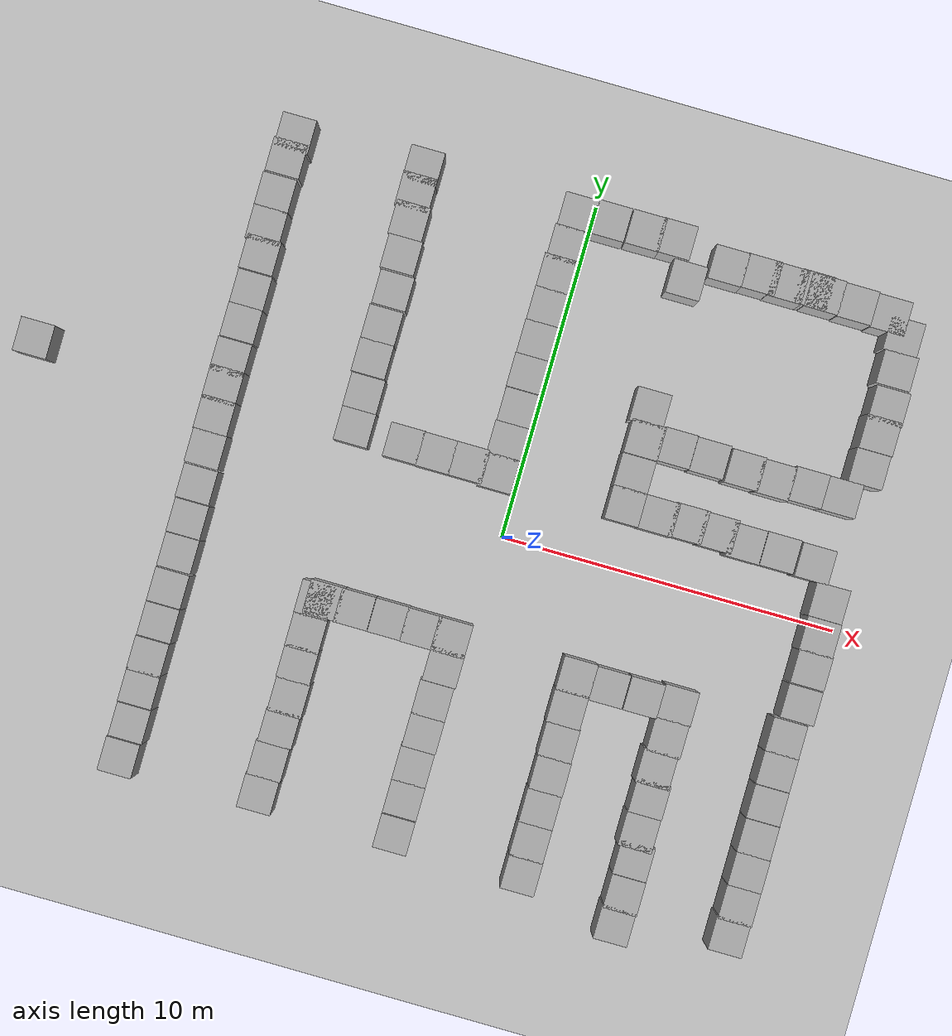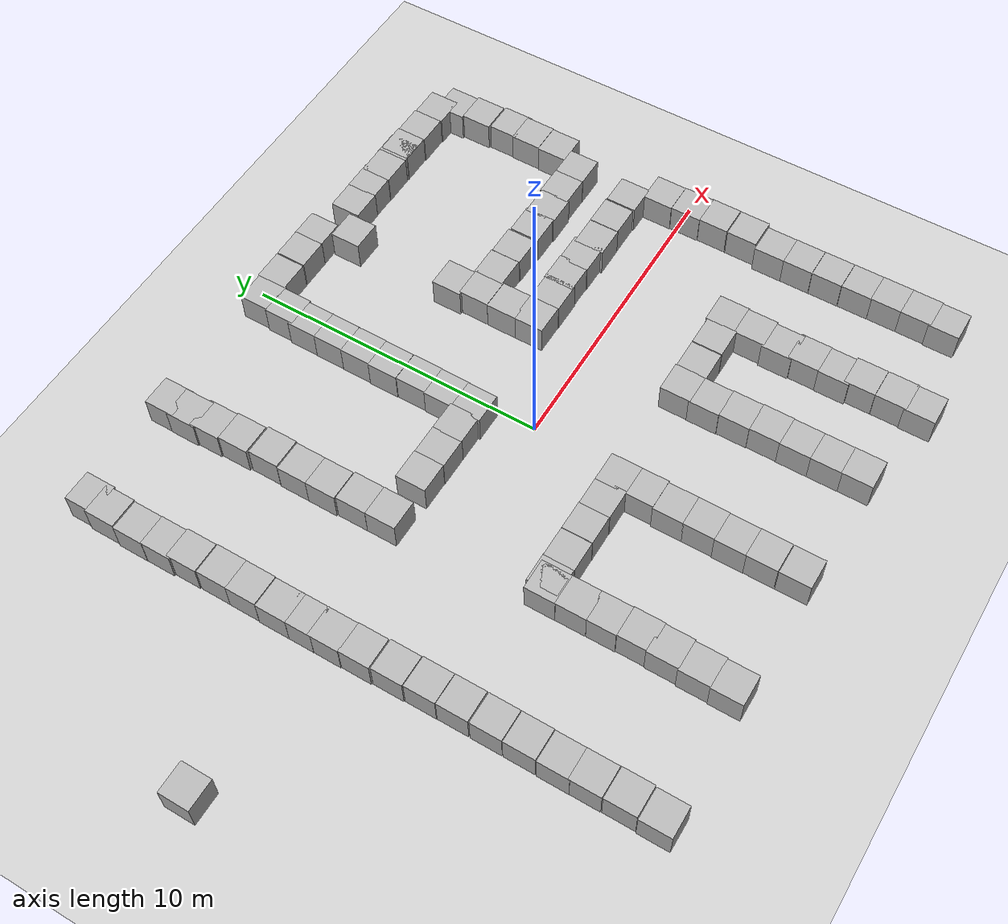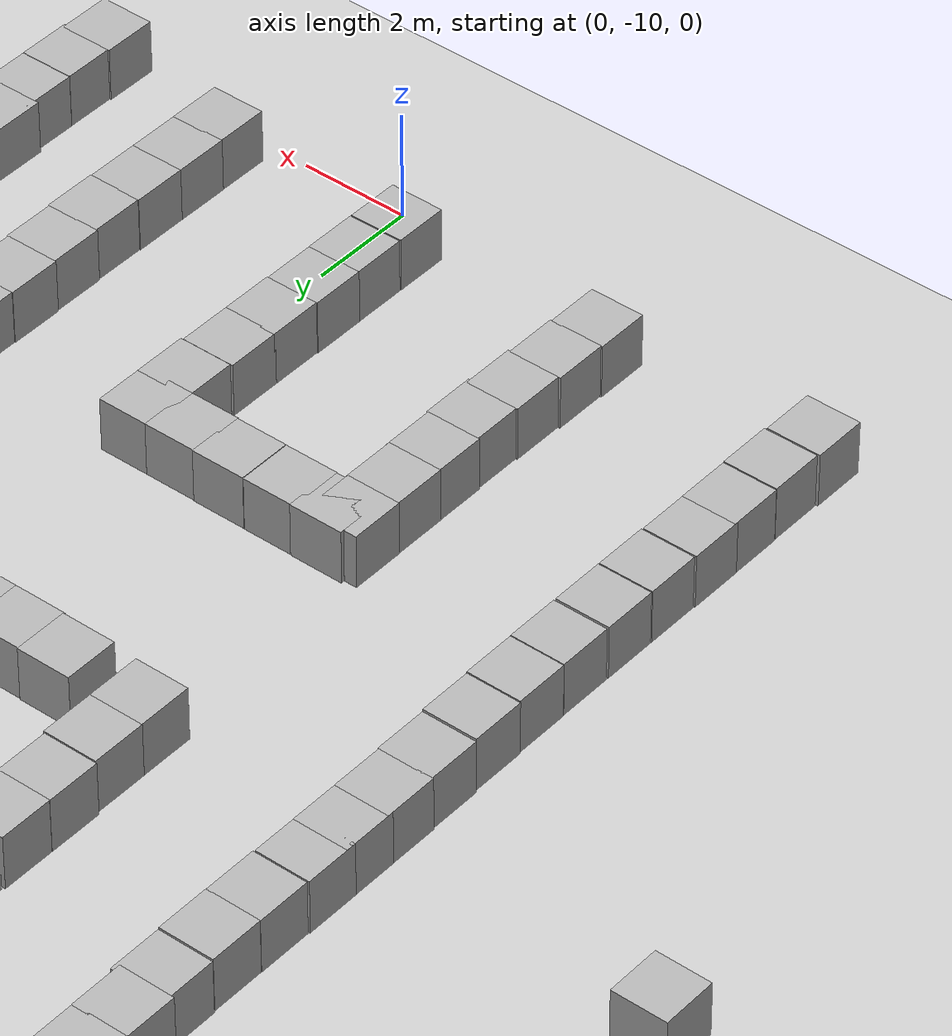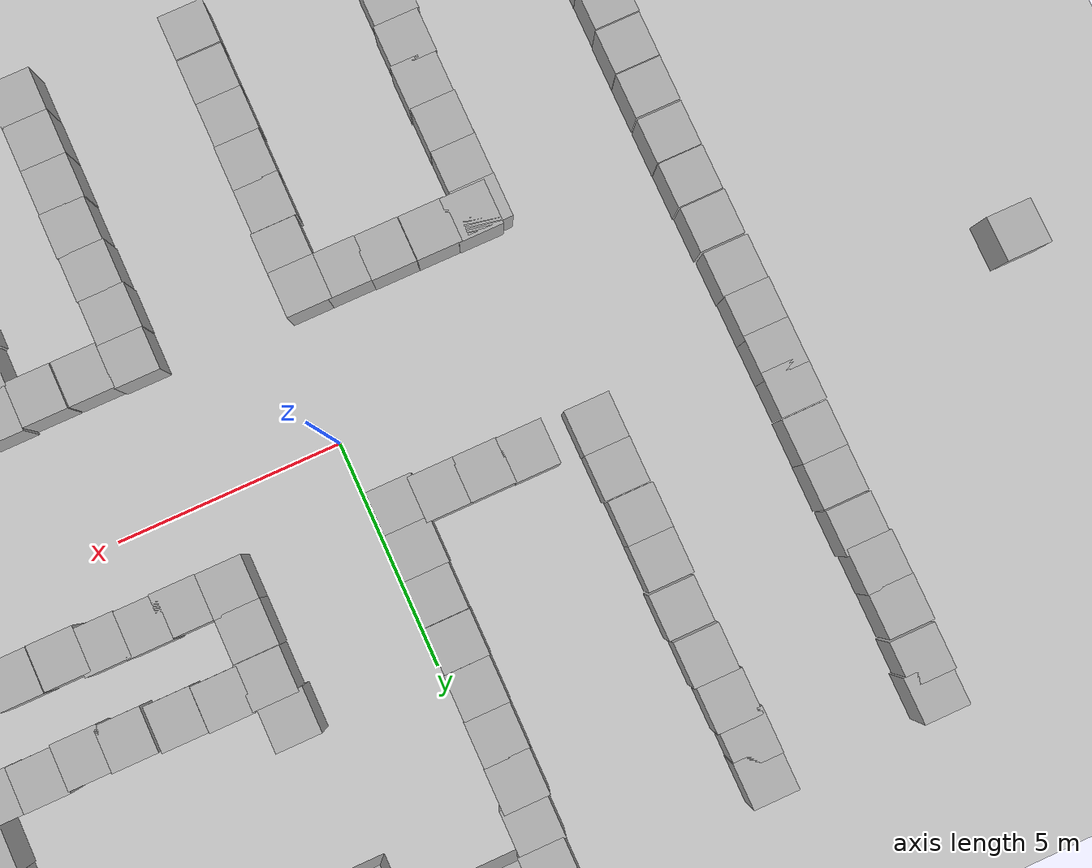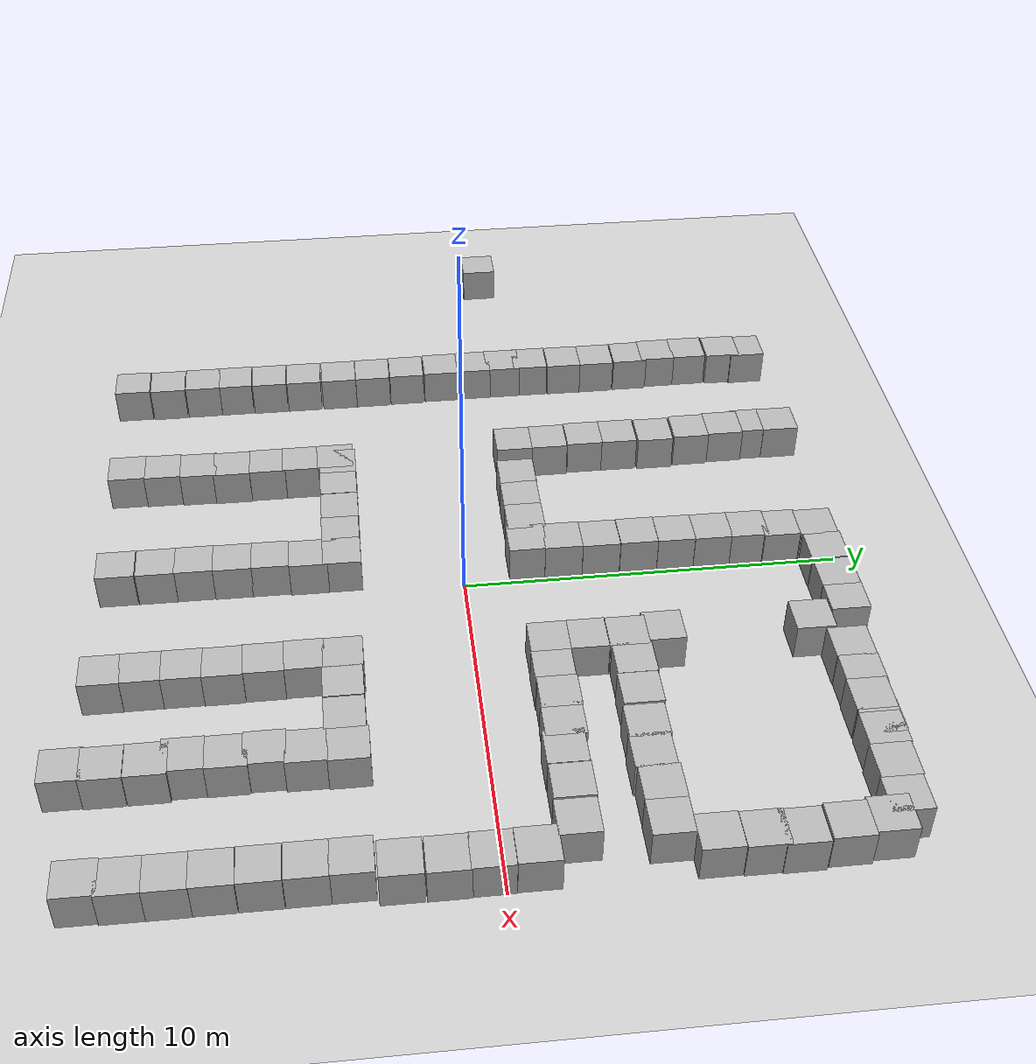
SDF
<sdf version="1.9">
 <world name="empty">
  <model name="ground_plane">
   <static>true</static>
   <link name="link">
    <collision name="collision">
     <geometry><plane><normal>0 0 1</normal><size>100 100</size></plane></geometry>
    </collision>
    <visual name="visual">
     <geometry><plane><normal>0 0 1</normal><size>100 100</size></plane></geometry>
     <material>
      <ambient>0.8 0.8 0.8 1</ambient>
      <diffuse>0.8 0.8 0.8 1</diffuse>
      <specular>0.8 0.8 0.8 1</specular>
     </material>
    </visual>
    <inertial>
     <mass>1</mass>
     <inertia><ixx>1</ixx><ixy>0</ixy><ixz>0</ixz><iyy>1</iyy><iyz>0</iyz><izz>1</izz></inertia>
    </inertial>
   </link>
  </model>
  <model name="ziekenhuis_walls">
   <static>true</static>
   <link name="wall_0">
    <pose>-0.628622 -3.17576 0.5 0 -0 0</pose>
    <visual name="visual_0">
     <geometry><box><size>1 1 1</size></box></geometry>
     <material>
      <ambient>0.3 0.3 0.3 1</ambient>
      <diffuse>0.7 0.7 0.7 1</diffuse>
      <specular>1 1 1 1</specular>
     </material>
    </visual>
    <collision name="collision_0"><geometry><box><size>1 1 1</size></box></geometry></collision>
   </link>
   <link name="wall_1">
    <pose>-1.54573 -3.17539 0.5 0 -0 0</pose>
    <visual name="visual_1">
     <geometry><box><size>1 1 1</size></box></geometry>
     <material>
      <ambient>0.3 0.3 0.3 1</ambient>
      <diffuse>0.7 0.7 0.7 1</diffuse>
      <specular>1 1 1 1</specular>
     </material>
    </visual>
    <collision name="collision_1"><geometry><box><size>1 1 1</size></box></geometry></collision>
   </link>
   <link name="wall_2">
    <pose>-2.50675 -3.16277 0.5 0 -0 0</pose>
    <visual name="visual_2">
     <geometry><box><size>1 1 1</size></box></geometry>
     <material>
      <ambient>0.3 0.3 0.3 1</ambient>
      <diffuse>0.7 0.7 0.7 1</diffuse>
      <specular>1 1 1 1</specular>
     </material>
    </visual>
    <collision name="collision_2"><geometry><box><size>1 1 1</size></box></geometry></collision>
   </link>
   <link name="wall_3">
    <pose>-3.51964 -3.15896 0.5 0 -0 0</pose>
    <visual name="visual_3">
     <geometry><box><size>1 1 1</size></box></geometry>
     <material>
      <ambient>0.3 0.3 0.3 1</ambient>
      <diffuse>0.7 0.7 0.7 1</diffuse>
      <specular>1 1 1 1</specular>
     </material>
    </visual>
    <collision name="collision_3"><geometry><box><size>1 1 1</size></box></geometry></collision>
   </link>
   <link name="wall_4">
    <pose>-4.44088 -3.14907 0.5 0 -0 0</pose>
    <visual name="visual_4">
     <geometry><box><size>1 1 1</size></box></geometry>
     <material>
      <ambient>0.3 0.3 0.3 1</ambient>
      <diffuse>0.7 0.7 0.7 1</diffuse>
      <specular>1 1 1 1</specular>
     </material>
    </visual>
    <collision name="collision_4"><geometry><box><size>1 1 1</size></box></geometry></collision>
   </link>
   <link name="wall_5">
    <pose>-14.46258 1.78849 0.5 0 -0 0</pose>
    <visual name="visual_5">
     <geometry><box><size>1 1 1</size></box></geometry>
     <material>
      <ambient>0.3 0.3 0.3 1</ambient>
      <diffuse>0.7 0.7 0.7 1</diffuse>
      <specular>1 1 1 1</specular>
     </material>
    </visual>
    <collision name="collision_5"><geometry><box><size>1 1 1</size></box></geometry></collision>
   </link>
   <link name="wall_6">
    <pose>-3.47193 1.7902 0.5 0 -0 0</pose>
    <visual name="visual_6">
     <geometry><box><size>1 1 1</size></box></geometry>
     <material>
      <ambient>0.3 0.3 0.3 1</ambient>
      <diffuse>0.7 0.7 0.7 1</diffuse>
      <specular>1 1 1 1</specular>
     </material>
    </visual>
    <collision name="collision_6"><geometry><box><size>1 1 1</size></box></geometry></collision>
   </link>
   <link name="wall_7">
    <pose>-2.5012 1.77664 0.5 0 -0 0</pose>
    <visual name="visual_7">
     <geometry><box><size>1 1 1</size></box></geometry>
     <material>
      <ambient>0.3 0.3 0.3 1</ambient>
      <diffuse>0.7 0.7 0.7 1</diffuse>
      <specular>1 1 1 1</specular>
     </material>
    </visual>
    <collision name="collision_7"><geometry><box><size>1 1 1</size></box></geometry></collision>
   </link>
   <link name="wall_8">
    <pose>-1.52755 1.77711 0.5 0 -0 0</pose>
    <visual name="visual_8">
     <geometry><box><size>1 1 1</size></box></geometry>
     <material>
      <ambient>0.3 0.3 0.3 1</ambient>
      <diffuse>0.7 0.7 0.7 1</diffuse>
      <specular>1 1 1 1</specular>
     </material>
    </visual>
    <collision name="collision_8"><geometry><box><size>1 1 1</size></box></geometry></collision>
   </link>
   <link name="wall_9">
    <pose>-0.640154 1.71751 0.5 0 -0 0</pose>
    <visual name="visual_9">
     <geometry><box><size>1 1 1</size></box></geometry>
     <material>
      <ambient>0.3 0.3 0.3 1</ambient>
      <diffuse>0.7 0.7 0.7 1</diffuse>
      <specular>1 1 1 1</specular>
     </material>
    </visual>
    <collision name="collision_9"><geometry><box><size>1 1 1</size></box></geometry></collision>
   </link>
   <link name="wall_10">
    <pose>-0.624925 -4.05306 0.5 0 -0 0</pose>
    <visual name="visual_10">
     <geometry><box><size>1 1 1</size></box></geometry>
     <material>
      <ambient>0.3 0.3 0.3 1</ambient>
      <diffuse>0.7 0.7 0.7 1</diffuse>
      <specular>1 1 1 1</specular>
     </material>
    </visual>
    <collision name="collision_10"><geometry><box><size>1 1 1</size></box></geometry></collision>
   </link>
   <link name="wall_11">
    <pose>-0.666125 -5.05588 0.5 0 -0 0</pose>
    <visual name="visual_11">
     <geometry><box><size>1 1 1</size></box></geometry>
     <material>
      <ambient>0.3 0.3 0.3 1</ambient>
      <diffuse>0.7 0.7 0.7 1</diffuse>
      <specular>1 1 1 1</specular>
     </material>
    </visual>
    <collision name="collision_11"><geometry><box><size>1 1 1</size></box></geometry></collision>
   </link>
   <link name="wall_12">
    <pose>-0.666125 -6.02587 0.5 0 -0 0</pose>
    <visual name="visual_12">
     <geometry><box><size>1 1 1</size></box></geometry>
     <material>
      <ambient>0.3 0.3 0.3 1</ambient>
      <diffuse>0.7 0.7 0.7 1</diffuse>
      <specular>1 1 1 1</specular>
     </material>
    </visual>
    <collision name="collision_12"><geometry><box><size>1 1 1</size></box></geometry></collision>
   </link>
   <link name="wall_13">
    <pose>-0.682233 -7.0253 0.5 0 -0 0</pose>
    <visual name="visual_13">
     <geometry><box><size>1 1 1</size></box></geometry>
     <material>
      <ambient>0.3 0.3 0.3 1</ambient>
      <diffuse>0.7 0.7 0.7 1</diffuse>
      <specular>1 1 1 1</specular>
     </material>
    </visual>
    <collision name="collision_13"><geometry><box><size>1 1 1</size></box></geometry></collision>
   </link>
   <link name="wall_14">
    <pose>-0.678292 -8.00642 0.500001 0 -0 0</pose>
    <visual name="visual_14">
     <geometry><box><size>1 1 1</size></box></geometry>
     <material>
      <ambient>0.3 0.3 0.3 1</ambient>
      <diffuse>0.7 0.7 0.7 1</diffuse>
      <specular>1 1 1 1</specular>
     </material>
    </visual>
    <collision name="collision_14"><geometry><box><size>1 1 1</size></box></geometry></collision>
   </link>
   <link name="wall_15">
    <pose>-0.682523 -9.03062 0.5 0 -0 0</pose>
    <visual name="visual_15">
     <geometry><box><size>1 1 1</size></box></geometry>
     <material>
      <ambient>0.3 0.3 0.3 1</ambient>
      <diffuse>0.7 0.7 0.7 1</diffuse>
      <specular>1 1 1 1</specular>
     </material>
    </visual>
    <collision name="collision_15"><geometry><box><size>1 1 1</size></box></geometry></collision>
   </link>
   <link name="wall_16">
    <pose>-0.62645 2.66518 0.5 0 -0 0</pose>
    <visual name="visual_16">
     <geometry><box><size>1 1 1</size></box></geometry>
     <material>
      <ambient>0.3 0.3 0.3 1</ambient>
      <diffuse>0.7 0.7 0.7 1</diffuse>
      <specular>1 1 1 1</specular>
     </material>
    </visual>
    <collision name="collision_16"><geometry><box><size>1 1 1</size></box></geometry></collision>
   </link>
   <link name="wall_17">
    <pose>-0.602355 3.6627 0.5 0 -0 0</pose>
    <visual name="visual_17">
     <geometry><box><size>1 1 1</size></box></geometry>
     <material>
      <ambient>0.3 0.3 0.3 1</ambient>
      <diffuse>0.7 0.7 0.7 1</diffuse>
      <specular>1 1 1 1</specular>
     </material>
    </visual>
    <collision name="collision_17"><geometry><box><size>1 1 1</size></box></geometry></collision>
   </link>
   <link name="wall_18">
    <pose>-0.610927 4.67319 0.5 0 -0 0</pose>
    <visual name="visual_18">
     <geometry><box><size>1 1 1</size></box></geometry>
     <material>
      <ambient>0.3 0.3 0.3 1</ambient>
      <diffuse>0.7 0.7 0.7 1</diffuse>
      <specular>1 1 1 1</specular>
     </material>
    </visual>
    <collision name="collision_18"><geometry><box><size>1 1 1</size></box></geometry></collision>
   </link>
   <link name="wall_19">
    <pose>-0.595787 5.67413 0.5 0 -0 0</pose>
    <visual name="visual_19">
     <geometry><box><size>1 1 1</size></box></geometry>
     <material>
      <ambient>0.3 0.3 0.3 1</ambient>
      <diffuse>0.7 0.7 0.7 1</diffuse>
      <specular>1 1 1 1</specular>
     </material>
    </visual>
    <collision name="collision_19"><geometry><box><size>1 1 1</size></box></geometry></collision>
   </link>
   <link name="wall_20">
    <pose>-0.583933 6.66382 0.5 0 -0 0</pose>
    <visual name="visual_20">
     <geometry><box><size>1 1 1</size></box></geometry>
     <material>
      <ambient>0.3 0.3 0.3 1</ambient>
      <diffuse>0.7 0.7 0.7 1</diffuse>
      <specular>1 1 1 1</specular>
     </material>
    </visual>
    <collision name="collision_20"><geometry><box><size>1 1 1</size></box></geometry></collision>
   </link>
   <link name="wall_21">
    <pose>-0.575678 7.6423 0.5 0 -0 0</pose>
    <visual name="visual_21">
     <geometry><box><size>1 1 1</size></box></geometry>
     <material>
      <ambient>0.3 0.3 0.3 1</ambient>
      <diffuse>0.7 0.7 0.7 1</diffuse>
      <specular>1 1 1 1</specular>
     </material>
    </visual>
    <collision name="collision_21"><geometry><box><size>1 1 1</size></box></geometry></collision>
   </link>
   <link name="wall_22">
    <pose>3.11918 -3.27527 0.5 0 -0 0</pose>
    <visual name="visual_22">
     <geometry><box><size>1 1 1</size></box></geometry>
     <material>
      <ambient>0.3 0.3 0.3 1</ambient>
      <diffuse>0.7 0.7 0.7 1</diffuse>
      <specular>1 1 1 1</specular>
     </material>
    </visual>
    <collision name="collision_22"><geometry><box><size>1 1 1</size></box></geometry></collision>
   </link>
   <link name="wall_23">
    <pose>3.10814 -4.22657 0.5 0 -0 0</pose>
    <visual name="visual_23">
     <geometry><box><size>1 1 1</size></box></geometry>
     <material>
      <ambient>0.3 0.3 0.3 1</ambient>
      <diffuse>0.7 0.7 0.7 1</diffuse>
      <specular>1 1 1 1</specular>
     </material>
    </visual>
    <collision name="collision_23"><geometry><box><size>1 1 1</size></box></geometry></collision>
   </link>
   <link name="wall_24">
    <pose>3.12982 -5.21504 0.5 0 -0 0</pose>
    <visual name="visual_24">
     <geometry><box><size>1 1 1</size></box></geometry>
     <material>
      <ambient>0.3 0.3 0.3 1</ambient>
      <diffuse>0.7 0.7 0.7 1</diffuse>
      <specular>1 1 1 1</specular>
     </material>
    </visual>
    <collision name="collision_24"><geometry><box><size>1 1 1</size></box></geometry></collision>
   </link>
   <link name="wall_25">
    <pose>3.15098 -6.19862 0.5 0 -0 0</pose>
    <visual name="visual_25">
     <geometry><box><size>1 1 1</size></box></geometry>
     <material>
      <ambient>0.3 0.3 0.3 1</ambient>
      <diffuse>0.7 0.7 0.7 1</diffuse>
      <specular>1 1 1 1</specular>
     </material>
    </visual>
    <collision name="collision_25"><geometry><box><size>1 1 1</size></box></geometry></collision>
   </link>
   <link name="wall_26">
    <pose>3.13753 -7.18844 0.5 0 -0 0</pose>
    <visual name="visual_26">
     <geometry><box><size>1 1 1</size></box></geometry>
     <material>
      <ambient>0.3 0.3 0.3 1</ambient>
      <diffuse>0.7 0.7 0.7 1</diffuse>
      <specular>1 1 1 1</specular>
     </material>
    </visual>
    <collision name="collision_26"><geometry><box><size>1 1 1</size></box></geometry></collision>
   </link>
   <link name="wall_27">
    <pose>3.13773 -8.18491 0.5 0 -0 0</pose>
    <visual name="visual_27">
     <geometry><box><size>1 1 1</size></box></geometry>
     <material>
      <ambient>0.3 0.3 0.3 1</ambient>
      <diffuse>0.7 0.7 0.7 1</diffuse>
      <specular>1 1 1 1</specular>
     </material>
    </visual>
    <collision name="collision_27"><geometry><box><size>1 1 1</size></box></geometry></collision>
   </link>
   <link name="wall_28">
    <pose>3.14306 -9.15602 0.5 0 -0 0</pose>
    <visual name="visual_28">
     <geometry><box><size>1 1 1</size></box></geometry>
     <material>
      <ambient>0.3 0.3 0.3 1</ambient>
      <diffuse>0.7 0.7 0.7 1</diffuse>
      <specular>1 1 1 1</specular>
     </material>
    </visual>
    <collision name="collision_28"><geometry><box><size>1 1 1</size></box></geometry></collision>
   </link>
   <link name="wall_29">
    <pose>3.11958 1.81014 0.5 0 -0 0</pose>
    <visual name="visual_29">
     <geometry><box><size>1 1 1</size></box></geometry>
     <material>
      <ambient>0.3 0.3 0.3 1</ambient>
      <diffuse>0.7 0.7 0.7 1</diffuse>
      <specular>1 1 1 1</specular>
     </material>
    </visual>
    <collision name="collision_29"><geometry><box><size>1 1 1</size></box></geometry></collision>
   </link>
   <link name="wall_30">
    <pose>3.11744 2.76434 0.5 0 -0 0</pose>
    <visual name="visual_30">
     <geometry><box><size>1 1 1</size></box></geometry>
     <material>
      <ambient>0.3 0.3 0.3 1</ambient>
      <diffuse>0.7 0.7 0.7 1</diffuse>
      <specular>1 1 1 1</specular>
     </material>
    </visual>
    <collision name="collision_30"><geometry><box><size>1 1 1</size></box></geometry></collision>
   </link>
   <link name="wall_31">
    <pose>3.13123 3.77565 0.5 0 -0 0</pose>
    <visual name="visual_31">
     <geometry><box><size>1 1 1</size></box></geometry>
     <material>
      <ambient>0.3 0.3 0.3 1</ambient>
      <diffuse>0.7 0.7 0.7 1</diffuse>
      <specular>1 1 1 1</specular>
     </material>
    </visual>
    <collision name="collision_31"><geometry><box><size>1 1 1</size></box></geometry></collision>
   </link>
   <link name="wall_32">
    <pose>3.02328 8.49449 0.5 0 -0 0</pose>
    <visual name="visual_32">
     <geometry><box><size>1 1 1</size></box></geometry>
     <material>
      <ambient>0.3 0.3 0.3 1</ambient>
      <diffuse>0.7 0.7 0.7 1</diffuse>
      <specular>1 1 1 1</specular>
     </material>
    </visual>
    <collision name="collision_32"><geometry><box><size>1 1 1</size></box></geometry></collision>
   </link>
   <link name="wall_33">
    <pose>-0.51947 8.52309 0.5 0 -0 0</pose>
    <visual name="visual_33">
     <geometry><box><size>1 1 1</size></box></geometry>
     <material>
      <ambient>0.3 0.3 0.3 1</ambient>
      <diffuse>0.7 0.7 0.7 1</diffuse>
      <specular>1 1 1 1</specular>
     </material>
    </visual>
    <collision name="collision_33"><geometry><box><size>1 1 1</size></box></geometry></collision>
   </link>
   <link name="wall_34">
    <pose>-0.473583 9.48528 0.5 0 -0 0</pose>
    <visual name="visual_34">
     <geometry><box><size>1 1 1</size></box></geometry>
     <material>
      <ambient>0.3 0.3 0.3 1</ambient>
      <diffuse>0.7 0.7 0.7 1</diffuse>
      <specular>1 1 1 1</specular>
     </material>
    </visual>
    <collision name="collision_34"><geometry><box><size>1 1 1</size></box></geometry></collision>
   </link>
   <link name="wall_35">
    <pose>0.491718 9.52437 0.5 0 -0 0</pose>
    <visual name="visual_35">
     <geometry><box><size>1 1 1</size></box></geometry>
     <material>
      <ambient>0.3 0.3 0.3 1</ambient>
      <diffuse>0.7 0.7 0.7 1</diffuse>
      <specular>1 1 1 1</specular>
     </material>
    </visual>
    <collision name="collision_35"><geometry><box><size>1 1 1</size></box></geometry></collision>
   </link>
   <link name="wall_36">
    <pose>1.52596 9.52964 0.5 0 -0 0</pose>
    <visual name="visual_36">
     <geometry><box><size>1 1 1</size></box></geometry>
     <material>
      <ambient>0.3 0.3 0.3 1</ambient>
      <diffuse>0.7 0.7 0.7 1</diffuse>
      <specular>1 1 1 1</specular>
     </material>
    </visual>
    <collision name="collision_36"><geometry><box><size>1 1 1</size></box></geometry></collision>
   </link>
   <link name="wall_37">
    <pose>2.43308 9.5376 0.5 0 -0 0</pose>
    <visual name="visual_37">
     <geometry><box><size>1 1 1</size></box></geometry>
     <material>
      <ambient>0.3 0.3 0.3 1</ambient>
      <diffuse>0.7 0.7 0.7 1</diffuse>
      <specular>1 1 1 1</specular>
     </material>
    </visual>
    <collision name="collision_37"><geometry><box><size>1 1 1</size></box></geometry></collision>
   </link>
   <link name="wall_38">
    <pose>4.10268 -3.30615 0.5 0 -0 0</pose>
    <visual name="visual_38">
     <geometry><box><size>1 1 1</size></box></geometry>
     <material>
      <ambient>0.3 0.3 0.3 1</ambient>
      <diffuse>0.7 0.7 0.7 1</diffuse>
      <specular>1 1 1 1</specular>
     </material>
    </visual>
    <collision name="collision_38"><geometry><box><size>1 1 1</size></box></geometry></collision>
   </link>
   <link name="wall_39">
    <pose>5.12914 -3.30697 0.5 0 -0 0</pose>
    <visual name="visual_39">
     <geometry><box><size>1 1 1</size></box></geometry>
     <material>
      <ambient>0.3 0.3 0.3 1</ambient>
      <diffuse>0.7 0.7 0.7 1</diffuse>
      <specular>1 1 1 1</specular>
     </material>
    </visual>
    <collision name="collision_39"><geometry><box><size>1 1 1</size></box></geometry></collision>
   </link>
   <link name="wall_40">
    <pose>6.11725 -3.25256 0.5 0 -0 0</pose>
    <visual name="visual_40">
     <geometry><box><size>1 1 1</size></box></geometry>
     <material>
      <ambient>0.3 0.3 0.3 1</ambient>
      <diffuse>0.7 0.7 0.7 1</diffuse>
      <specular>1 1 1 1</specular>
     </material>
    </visual>
    <collision name="collision_40"><geometry><box><size>1 1 1</size></box></geometry></collision>
   </link>
   <link name="wall_41">
    <pose>6.08814 -4.23526 0.5 0 -0 0</pose>
    <visual name="visual_41">
     <geometry><box><size>1 1 1</size></box></geometry>
     <material>
      <ambient>0.3 0.3 0.3 1</ambient>
      <diffuse>0.7 0.7 0.7 1</diffuse>
      <specular>1 1 1 1</specular>
     </material>
    </visual>
    <collision name="collision_41"><geometry><box><size>1 1 1</size></box></geometry></collision>
   </link>
   <link name="wall_42">
    <pose>9.34735 -3.31674 0.5 0 -0 0</pose>
    <visual name="visual_42">
     <geometry><box><size>1 1 1</size></box></geometry>
     <material>
      <ambient>0.3 0.3 0.3 1</ambient>
      <diffuse>0.7 0.7 0.7 1</diffuse>
      <specular>1 1 1 1</specular>
     </material>
    </visual>
    <collision name="collision_42"><geometry><box><size>1 1 1</size></box></geometry></collision>
   </link>
   <link name="wall_43">
    <pose>6.02668 -5.18071 0.5 0 -0 0</pose>
    <visual name="visual_43">
     <geometry><box><size>1 1 1</size></box></geometry>
     <material>
      <ambient>0.3 0.3 0.3 1</ambient>
      <diffuse>0.7 0.7 0.7 1</diffuse>
      <specular>1 1 1 1</specular>
     </material>
    </visual>
    <collision name="collision_43"><geometry><box><size>1 1 1</size></box></geometry></collision>
   </link>
   <link name="wall_44">
    <pose>6.06456 -6.05794 0.5 0 -0 0</pose>
    <visual name="visual_44">
     <geometry><box><size>1 1 1</size></box></geometry>
     <material>
      <ambient>0.3 0.3 0.3 1</ambient>
      <diffuse>0.7 0.7 0.7 1</diffuse>
      <specular>1 1 1 1</specular>
     </material>
    </visual>
    <collision name="collision_44"><geometry><box><size>1 1 1</size></box></geometry></collision>
   </link>
   <link name="wall_45">
    <pose>9.35294 -4.29522 0.5 0 -0 0</pose>
    <visual name="visual_45">
     <geometry><box><size>1 1 1</size></box></geometry>
     <material>
      <ambient>0.3 0.3 0.3 1</ambient>
      <diffuse>0.7 0.7 0.7 1</diffuse>
      <specular>1 1 1 1</specular>
     </material>
    </visual>
    <collision name="collision_45"><geometry><box><size>1 1 1</size></box></geometry></collision>
   </link>
   <link name="wall_46">
    <pose>9.35811 -5.30489 0.5 0 -0 0</pose>
    <visual name="visual_46">
     <geometry><box><size>1 1 1</size></box></geometry>
     <material>
      <ambient>0.3 0.3 0.3 1</ambient>
      <diffuse>0.7 0.7 0.7 1</diffuse>
      <specular>1 1 1 1</specular>
     </material>
    </visual>
    <collision name="collision_46"><geometry><box><size>1 1 1</size></box></geometry></collision>
   </link>
   <link name="wall_47">
    <pose>9.3637 -6.31467 0.5 0 -0 0</pose>
    <visual name="visual_47">
     <geometry><box><size>1 1 1</size></box></geometry>
     <material>
      <ambient>0.3 0.3 0.3 1</ambient>
      <diffuse>0.7 0.7 0.7 1</diffuse>
      <specular>1 1 1 1</specular>
     </material>
    </visual>
    <collision name="collision_47"><geometry><box><size>1 1 1</size></box></geometry></collision>
   </link>
   <link name="wall_48">
    <pose>6.0468 -7.05577 0.5 0 -0 0</pose>
    <visual name="visual_48">
     <geometry><box><size>1 1 1</size></box></geometry>
     <material>
      <ambient>0.3 0.3 0.3 1</ambient>
      <diffuse>0.7 0.7 0.7 1</diffuse>
      <specular>1 1 1 1</specular>
     </material>
    </visual>
    <collision name="collision_48"><geometry><box><size>1 1 1</size></box></geometry></collision>
   </link>
   <link name="wall_49">
    <pose>6.11985 -7.88024 0.5 0 -0 0</pose>
    <visual name="visual_49">
     <geometry><box><size>1 1 1</size></box></geometry>
     <material>
      <ambient>0.3 0.3 0.3 1</ambient>
      <diffuse>0.7 0.7 0.7 1</diffuse>
      <specular>1 1 1 1</specular>
     </material>
    </visual>
    <collision name="collision_49"><geometry><box><size>1 1 1</size></box></geometry></collision>
   </link>
   <link name="wall_50">
    <pose>6.12415 -8.88808 0.5 0 -0 0</pose>
    <visual name="visual_50">
     <geometry><box><size>1 1 1</size></box></geometry>
     <material>
      <ambient>0.3 0.3 0.3 1</ambient>
      <diffuse>0.7 0.7 0.7 1</diffuse>
      <specular>1 1 1 1</specular>
     </material>
    </visual>
    <collision name="collision_50"><geometry><box><size>1 1 1</size></box></geometry></collision>
   </link>
   <link name="wall_51">
    <pose>9.37141 -7.29127 0.5 0 -0 0</pose>
    <visual name="visual_51">
     <geometry><box><size>1 1 1</size></box></geometry>
     <material>
      <ambient>0.3 0.3 0.3 1</ambient>
      <diffuse>0.7 0.7 0.7 1</diffuse>
      <specular>1 1 1 1</specular>
     </material>
    </visual>
    <collision name="collision_51"><geometry><box><size>1 1 1</size></box></geometry></collision>
   </link>
   <link name="wall_52">
    <pose>9.36911 -8.28592 0.5 0 -0 0</pose>
    <visual name="visual_52">
     <geometry><box><size>1 1 1</size></box></geometry>
     <material>
      <ambient>0.3 0.3 0.3 1</ambient>
      <diffuse>0.7 0.7 0.7 1</diffuse>
      <specular>1 1 1 1</specular>
     </material>
    </visual>
    <collision name="collision_52"><geometry><box><size>1 1 1</size></box></geometry></collision>
   </link>
   <link name="wall_53">
    <pose>9.33438 -9.21361 0.5 0 -0 0</pose>
    <visual name="visual_53">
     <geometry><box><size>1 1 1</size></box></geometry>
     <material>
      <ambient>0.3 0.3 0.3 1</ambient>
      <diffuse>0.7 0.7 0.7 1</diffuse>
      <specular>1 1 1 1</specular>
     </material>
    </visual>
    <collision name="collision_53"><geometry><box><size>1 1 1</size></box></geometry></collision>
   </link>
   <link name="wall_54">
    <pose>6.09605 -9.80963 0.5 0 -0 0</pose>
    <visual name="visual_54">
     <geometry><box><size>1 1 1</size></box></geometry>
     <material>
      <ambient>0.3 0.3 0.3 1</ambient>
      <diffuse>0.7 0.7 0.7 1</diffuse>
      <specular>1 1 1 1</specular>
     </material>
    </visual>
    <collision name="collision_54"><geometry><box><size>1 1 1</size></box></geometry></collision>
   </link>
   <link name="wall_55">
    <pose>4.11919 1.79761 0.5 0 -0 0</pose>
    <visual name="visual_55">
     <geometry><box><size>1 1 1</size></box></geometry>
     <material>
      <ambient>0.3 0.3 0.3 1</ambient>
      <diffuse>0.7 0.7 0.7 1</diffuse>
      <specular>1 1 1 1</specular>
     </material>
    </visual>
    <collision name="collision_55"><geometry><box><size>1 1 1</size></box></geometry></collision>
   </link>
   <link name="wall_56">
    <pose>4.99012 1.81929 0.5 0 -0 0</pose>
    <visual name="visual_56">
     <geometry><box><size>1 1 1</size></box></geometry>
     <material>
      <ambient>0.3 0.3 0.3 1</ambient>
      <diffuse>0.7 0.7 0.7 1</diffuse>
      <specular>1 1 1 1</specular>
     </material>
    </visual>
    <collision name="collision_56"><geometry><box><size>1 1 1</size></box></geometry></collision>
   </link>
   <link name="wall_57">
    <pose>5.88812 1.79879 0.5 0 -0 0</pose>
    <visual name="visual_57">
     <geometry><box><size>1 1 1</size></box></geometry>
     <material>
      <ambient>0.3 0.3 0.3 1</ambient>
      <diffuse>0.7 0.7 0.7 1</diffuse>
      <specular>1 1 1 1</specular>
     </material>
    </visual>
    <collision name="collision_57"><geometry><box><size>1 1 1</size></box></geometry></collision>
   </link>
   <link name="wall_58">
    <pose>6.7339 1.72644 0.5 0 -0 0</pose>
    <visual name="visual_58">
     <geometry><box><size>1 1 1</size></box></geometry>
     <material>
      <ambient>0.3 0.3 0.3 1</ambient>
      <diffuse>0.7 0.7 0.7 1</diffuse>
      <specular>1 1 1 1</specular>
     </material>
    </visual>
    <collision name="collision_58"><geometry><box><size>1 1 1</size></box></geometry></collision>
   </link>
   <link name="wall_59">
    <pose>7.74781 1.736 0.5 0 -0 0</pose>
    <visual name="visual_59">
     <geometry><box><size>1 1 1</size></box></geometry>
     <material>
      <ambient>0.3 0.3 0.3 1</ambient>
      <diffuse>0.7 0.7 0.7 1</diffuse>
      <specular>1 1 1 1</specular>
     </material>
    </visual>
    <collision name="collision_59"><geometry><box><size>1 1 1</size></box></geometry></collision>
   </link>
   <link name="wall_60">
    <pose>8.79181 1.70761 0.5 0 -0 0</pose>
    <visual name="visual_60">
     <geometry><box><size>1 1 1</size></box></geometry>
     <material>
      <ambient>0.3 0.3 0.3 1</ambient>
      <diffuse>0.7 0.7 0.7 1</diffuse>
      <specular>1 1 1 1</specular>
     </material>
    </visual>
    <collision name="collision_60"><geometry><box><size>1 1 1</size></box></geometry></collision>
   </link>
   <link name="wall_61">
    <pose>9.47232 0.73234 0.5 0 -0 0</pose>
    <visual name="visual_61">
     <geometry><box><size>1 1 1</size></box></geometry>
     <material>
      <ambient>0.3 0.3 0.3 1</ambient>
      <diffuse>0.7 0.7 0.7 1</diffuse>
      <specular>1 1 1 1</specular>
     </material>
    </visual>
    <collision name="collision_61"><geometry><box><size>1 1 1</size></box></geometry></collision>
   </link>
   <link name="wall_62">
    <pose>9.49129 -0.27314 0.5 0 -0 0</pose>
    <visual name="visual_62">
     <geometry><box><size>1 1 1</size></box></geometry>
     <material>
      <ambient>0.3 0.3 0.3 1</ambient>
      <diffuse>0.7 0.7 0.7 1</diffuse>
      <specular>1 1 1 1</specular>
     </material>
    </visual>
    <collision name="collision_62"><geometry><box><size>1 1 1</size></box></geometry></collision>
   </link>
   <link name="wall_63">
    <pose>9.51034 -1.24295 0.5 0 -0 0</pose>
    <visual name="visual_63">
     <geometry><box><size>1 1 1</size></box></geometry>
     <material>
      <ambient>0.3 0.3 0.3 1</ambient>
      <diffuse>0.7 0.7 0.7 1</diffuse>
      <specular>1 1 1 1</specular>
     </material>
    </visual>
    <collision name="collision_63"><geometry><box><size>1 1 1</size></box></geometry></collision>
   </link>
   <link name="wall_64">
    <pose>9.50221 -2.2745 0.5 0 -0 0</pose>
    <visual name="visual_64">
     <geometry><box><size>1 1 1</size></box></geometry>
     <material>
      <ambient>0.3 0.3 0.3 1</ambient>
      <diffuse>0.7 0.7 0.7 1</diffuse>
      <specular>1 1 1 1</specular>
     </material>
    </visual>
    <collision name="collision_64"><geometry><box><size>1 1 1</size></box></geometry></collision>
   </link>
   <link name="wall_65">
    <pose>4.07342 3.80274 0.5 0 -0 0</pose>
    <visual name="visual_65">
     <geometry><box><size>1 1 1</size></box></geometry>
     <material>
      <ambient>0.3 0.3 0.3 1</ambient>
      <diffuse>0.7 0.7 0.7 1</diffuse>
      <specular>1 1 1 1</specular>
     </material>
    </visual>
    <collision name="collision_65"><geometry><box><size>1 1 1</size></box></geometry></collision>
   </link>
   <link name="wall_66">
    <pose>5.07651 3.77821 0.5 0 -0 0</pose>
    <visual name="visual_66">
     <geometry><box><size>1 1 1</size></box></geometry>
     <material>
      <ambient>0.3 0.3 0.3 1</ambient>
      <diffuse>0.7 0.7 0.7 1</diffuse>
      <specular>1 1 1 1</specular>
     </material>
    </visual>
    <collision name="collision_66"><geometry><box><size>1 1 1</size></box></geometry></collision>
   </link>
   <link name="wall_67">
    <pose>4.07663 9.21213 0.5 0 -0 0</pose>
    <visual name="visual_67">
     <geometry><box><size>1 1 1</size></box></geometry>
     <material>
      <ambient>0.3 0.3 0.3 1</ambient>
      <diffuse>0.7 0.7 0.7 1</diffuse>
      <specular>1 1 1 1</specular>
     </material>
    </visual>
    <collision name="collision_67"><geometry><box><size>1 1 1</size></box></geometry></collision>
   </link>
   <link name="wall_68">
    <pose>5.04602 9.2236 0.5 0 -0 0</pose>
    <visual name="visual_68">
     <geometry><box><size>1 1 1</size></box></geometry>
     <material>
      <ambient>0.3 0.3 0.3 1</ambient>
      <diffuse>0.7 0.7 0.7 1</diffuse>
      <specular>1 1 1 1</specular>
     </material>
    </visual>
    <collision name="collision_68"><geometry><box><size>1 1 1</size></box></geometry></collision>
   </link>
   <link name="wall_69">
    <pose>5.84829 9.2067 0.5 0 -0 0</pose>
    <visual name="visual_69">
     <geometry><box><size>1 1 1</size></box></geometry>
     <material>
      <ambient>0.3 0.3 0.3 1</ambient>
      <diffuse>0.7 0.7 0.7 1</diffuse>
      <specular>1 1 1 1</specular>
     </material>
    </visual>
    <collision name="collision_69"><geometry><box><size>1 1 1</size></box></geometry></collision>
   </link>
   <link name="wall_70">
    <pose>6.12743 3.73131 0.5 0 -0 0</pose>
    <visual name="visual_70">
     <geometry><box><size>1 1 1</size></box></geometry>
     <material>
      <ambient>0.3 0.3 0.3 1</ambient>
      <diffuse>0.7 0.7 0.7 1</diffuse>
      <specular>1 1 1 1</specular>
     </material>
    </visual>
    <collision name="collision_70"><geometry><box><size>1 1 1</size></box></geometry></collision>
   </link>
   <link name="wall_71">
    <pose>3.03646 4.70592 0.5 0 -0 0</pose>
    <visual name="visual_71">
     <geometry><box><size>1 1 1</size></box></geometry>
     <material>
      <ambient>0.3 0.3 0.3 1</ambient>
      <diffuse>0.7 0.7 0.7 1</diffuse>
      <specular>1 1 1 1</specular>
     </material>
    </visual>
    <collision name="collision_71"><geometry><box><size>1 1 1</size></box></geometry></collision>
   </link>
   <link name="wall_72">
    <pose>-4.67107 -4.18888 0.5 0 -0 0</pose>
    <visual name="visual_72">
     <geometry><box><size>1 1 1</size></box></geometry>
     <material>
      <ambient>0.3 0.3 0.3 1</ambient>
      <diffuse>0.7 0.7 0.7 1</diffuse>
      <specular>1 1 1 1</specular>
     </material>
    </visual>
    <collision name="collision_72"><geometry><box><size>1 1 1</size></box></geometry></collision>
   </link>
   <link name="wall_73">
    <pose>-4.66454 -5.11287 0.5 0 -0 0</pose>
    <visual name="visual_73">
     <geometry><box><size>1 1 1</size></box></geometry>
     <material>
      <ambient>0.3 0.3 0.3 1</ambient>
      <diffuse>0.7 0.7 0.7 1</diffuse>
      <specular>1 1 1 1</specular>
     </material>
    </visual>
    <collision name="collision_73"><geometry><box><size>1 1 1</size></box></geometry></collision>
   </link>
   <link name="wall_74">
    <pose>-4.64106 -6.09662 0.5 0 -0 0</pose>
    <visual name="visual_74">
     <geometry><box><size>1 1 1</size></box></geometry>
     <material>
      <ambient>0.3 0.3 0.3 1</ambient>
      <diffuse>0.7 0.7 0.7 1</diffuse>
      <specular>1 1 1 1</specular>
     </material>
    </visual>
    <collision name="collision_74"><geometry><box><size>1 1 1</size></box></geometry></collision>
   </link>
   <link name="wall_75">
    <pose>-4.6679 -7.01679 0.5 0 -0 0</pose>
    <visual name="visual_75">
     <geometry><box><size>1 1 1</size></box></geometry>
     <material>
      <ambient>0.3 0.3 0.3 1</ambient>
      <diffuse>0.7 0.7 0.7 1</diffuse>
      <specular>1 1 1 1</specular>
     </material>
    </visual>
    <collision name="collision_75"><geometry><box><size>1 1 1</size></box></geometry></collision>
   </link>
   <link name="wall_76">
    <pose>-4.70688 -8.00315 0.5 0 -0 0</pose>
    <visual name="visual_76">
     <geometry><box><size>1 1 1</size></box></geometry>
     <material>
      <ambient>0.3 0.3 0.3 1</ambient>
      <diffuse>0.7 0.7 0.7 1</diffuse>
      <specular>1 1 1 1</specular>
     </material>
    </visual>
    <collision name="collision_76"><geometry><box><size>1 1 1</size></box></geometry></collision>
   </link>
   <link name="wall_77">
    <pose>-4.73335 -8.98617 0.5 0 -0 0</pose>
    <visual name="visual_77">
     <geometry><box><size>1 1 1</size></box></geometry>
     <material>
      <ambient>0.3 0.3 0.3 1</ambient>
      <diffuse>0.7 0.7 0.7 1</diffuse>
      <specular>1 1 1 1</specular>
     </material>
    </visual>
    <collision name="collision_77"><geometry><box><size>1 1 1</size></box></geometry></collision>
   </link>
   <link name="wall_78">
    <pose>-8.81264 -2.98752 0.5 0 -0 0</pose>
    <visual name="visual_78">
     <geometry><box><size>1 1 1</size></box></geometry>
     <material>
      <ambient>0.3 0.3 0.3 1</ambient>
      <diffuse>0.7 0.7 0.7 1</diffuse>
      <specular>1 1 1 1</specular>
     </material>
    </visual>
    <collision name="collision_78"><geometry><box><size>1 1 1</size></box></geometry></collision>
   </link>
   <link name="wall_79">
    <pose>-8.815 -4.02714 0.5 0 -0 0</pose>
    <visual name="visual_79">
     <geometry><box><size>1 1 1</size></box></geometry>
     <material>
      <ambient>0.3 0.3 0.3 1</ambient>
      <diffuse>0.7 0.7 0.7 1</diffuse>
      <specular>1 1 1 1</specular>
     </material>
    </visual>
    <collision name="collision_79"><geometry><box><size>1 1 1</size></box></geometry></collision>
   </link>
   <link name="wall_80">
    <pose>-8.81694 -5.04734 0.5 0 -0 0</pose>
    <visual name="visual_80">
     <geometry><box><size>1 1 1</size></box></geometry>
     <material>
      <ambient>0.3 0.3 0.3 1</ambient>
      <diffuse>0.7 0.7 0.7 1</diffuse>
      <specular>1 1 1 1</specular>
     </material>
    </visual>
    <collision name="collision_80"><geometry><box><size>1 1 1</size></box></geometry></collision>
   </link>
   <link name="wall_81">
    <pose>-8.83179 -6.07231 0.5 0 -0 0</pose>
    <visual name="visual_81">
     <geometry><box><size>1 1 1</size></box></geometry>
     <material>
      <ambient>0.3 0.3 0.3 1</ambient>
      <diffuse>0.7 0.7 0.7 1</diffuse>
      <specular>1 1 1 1</specular>
     </material>
    </visual>
    <collision name="collision_81"><geometry><box><size>1 1 1</size></box></geometry></collision>
   </link>
   <link name="wall_82">
    <pose>-8.82681 -7.01513 0.5 0 -0 0</pose>
    <visual name="visual_82">
     <geometry><box><size>1 1 1</size></box></geometry>
     <material>
      <ambient>0.3 0.3 0.3 1</ambient>
      <diffuse>0.7 0.7 0.7 1</diffuse>
      <specular>1 1 1 1</specular>
     </material>
    </visual>
    <collision name="collision_82"><geometry><box><size>1 1 1</size></box></geometry></collision>
   </link>
   <link name="wall_83">
    <pose>-8.81545 -8.03763 0.5 0 -0 0</pose>
    <visual name="visual_83">
     <geometry><box><size>1 1 1</size></box></geometry>
     <material>
      <ambient>0.3 0.3 0.3 1</ambient>
      <diffuse>0.7 0.7 0.7 1</diffuse>
      <specular>1 1 1 1</specular>
     </material>
    </visual>
    <collision name="collision_83"><geometry><box><size>1 1 1</size></box></geometry></collision>
   </link>
   <link name="wall_84">
    <pose>-8.84814 -9.06517 0.5 0 -0 0</pose>
    <visual name="visual_84">
     <geometry><box><size>1 1 1</size></box></geometry>
     <material>
      <ambient>0.3 0.3 0.3 1</ambient>
      <diffuse>0.7 0.7 0.7 1</diffuse>
      <specular>1 1 1 1</specular>
     </material>
    </visual>
    <collision name="collision_84"><geometry><box><size>1 1 1</size></box></geometry></collision>
   </link>
   <link name="wall_85">
    <pose>-8.82067 -1.97231 0.5 0 -0 0</pose>
    <visual name="visual_85">
     <geometry><box><size>1 1 1</size></box></geometry>
     <material>
      <ambient>0.3 0.3 0.3 1</ambient>
      <diffuse>0.7 0.7 0.7 1</diffuse>
      <specular>1 1 1 1</specular>
     </material>
    </visual>
    <collision name="collision_85"><geometry><box><size>1 1 1</size></box></geometry></collision>
   </link>
   <link name="wall_86">
    <pose>-8.84252 -0.94998 0.5 0 -0 0</pose>
    <visual name="visual_86">
     <geometry><box><size>1 1 1</size></box></geometry>
     <material>
      <ambient>0.3 0.3 0.3 1</ambient>
      <diffuse>0.7 0.7 0.7 1</diffuse>
      <specular>1 1 1 1</specular>
     </material>
    </visual>
    <collision name="collision_86"><geometry><box><size>1 1 1</size></box></geometry></collision>
   </link>
   <link name="wall_87">
    <pose>-8.87296 0.088667 0.5 0 -0 0</pose>
    <visual name="visual_87">
     <geometry><box><size>1 1 1</size></box></geometry>
     <material>
      <ambient>0.3 0.3 0.3 1</ambient>
      <diffuse>0.7 0.7 0.7 1</diffuse>
      <specular>1 1 1 1</specular>
     </material>
    </visual>
    <collision name="collision_87"><geometry><box><size>1 1 1</size></box></geometry></collision>
   </link>
   <link name="wall_88">
    <pose>-8.89211 1.06883 0.5 0 -0 0</pose>
    <visual name="visual_88">
     <geometry><box><size>1 1 1</size></box></geometry>
     <material>
      <ambient>0.3 0.3 0.3 1</ambient>
      <diffuse>0.7 0.7 0.7 1</diffuse>
      <specular>1 1 1 1</specular>
     </material>
    </visual>
    <collision name="collision_88"><geometry><box><size>1 1 1</size></box></geometry></collision>
   </link>
   <link name="wall_89">
    <pose>-4.67912 -3.21396 0.5 0 -0 0</pose>
    <visual name="visual_89">
     <geometry><box><size>1 1 1</size></box></geometry>
     <material>
      <ambient>0.3 0.3 0.3 1</ambient>
      <diffuse>0.7 0.7 0.7 1</diffuse>
      <specular>1 1 1 1</specular>
     </material>
    </visual>
    <collision name="collision_89"><geometry><box><size>1 1 1</size></box></geometry></collision>
   </link>
   <link name="wall_90">
    <pose>-8.89599 1.97063 0.5 0 -0 0</pose>
    <visual name="visual_90">
     <geometry><box><size>1 1 1</size></box></geometry>
     <material>
      <ambient>0.3 0.3 0.3 1</ambient>
      <diffuse>0.7 0.7 0.7 1</diffuse>
      <specular>1 1 1 1</specular>
     </material>
    </visual>
    <collision name="collision_90"><geometry><box><size>1 1 1</size></box></geometry></collision>
   </link>
   <link name="wall_91">
    <pose>-8.89948 2.79692 0.5 0 -0 0</pose>
    <visual name="visual_91">
     <geometry><box><size>1 1 1</size></box></geometry>
     <material>
      <ambient>0.3 0.3 0.3 1</ambient>
      <diffuse>0.7 0.7 0.7 1</diffuse>
      <specular>1 1 1 1</specular>
     </material>
    </visual>
    <collision name="collision_91"><geometry><box><size>1 1 1</size></box></geometry></collision>
   </link>
   <link name="wall_92">
    <pose>-8.88233 3.82175 0.5 0 -0 0</pose>
    <visual name="visual_92">
     <geometry><box><size>1 1 1</size></box></geometry>
     <material>
      <ambient>0.3 0.3 0.3 1</ambient>
      <diffuse>0.7 0.7 0.7 1</diffuse>
      <specular>1 1 1 1</specular>
     </material>
    </visual>
    <collision name="collision_92"><geometry><box><size>1 1 1</size></box></geometry></collision>
   </link>
   <link name="wall_93">
    <pose>-8.87705 4.81154 0.5 0 -0 0</pose>
    <visual name="visual_93">
     <geometry><box><size>1 1 1</size></box></geometry>
     <material>
      <ambient>0.3 0.3 0.3 1</ambient>
      <diffuse>0.7 0.7 0.7 1</diffuse>
      <specular>1 1 1 1</specular>
     </material>
    </visual>
    <collision name="collision_93"><geometry><box><size>1 1 1</size></box></geometry></collision>
   </link>
   <link name="wall_94">
    <pose>-8.89745 5.84189 0.5 0 -0 0</pose>
    <visual name="visual_94">
     <geometry><box><size>1 1 1</size></box></geometry>
     <material>
      <ambient>0.3 0.3 0.3 1</ambient>
      <diffuse>0.7 0.7 0.7 1</diffuse>
      <specular>1 1 1 1</specular>
     </material>
    </visual>
    <collision name="collision_94"><geometry><box><size>1 1 1</size></box></geometry></collision>
   </link>
   <link name="wall_95">
    <pose>-8.95099 6.70426 0.5 0 -0 0</pose>
    <visual name="visual_95">
     <geometry><box><size>1 1 1</size></box></geometry>
     <material>
      <ambient>0.3 0.3 0.3 1</ambient>
      <diffuse>0.7 0.7 0.7 1</diffuse>
      <specular>1 1 1 1</specular>
     </material>
    </visual>
    <collision name="collision_95"><geometry><box><size>1 1 1</size></box></geometry></collision>
   </link>
   <link name="wall_96">
    <pose>-8.95961 7.66721 0.5 0 -0 0</pose>
    <visual name="visual_96">
     <geometry><box><size>1 1 1</size></box></geometry>
     <material>
      <ambient>0.3 0.3 0.3 1</ambient>
      <diffuse>0.7 0.7 0.7 1</diffuse>
      <specular>1 1 1 1</specular>
     </material>
    </visual>
    <collision name="collision_96"><geometry><box><size>1 1 1</size></box></geometry></collision>
   </link>
   <link name="wall_97">
    <pose>-8.929 8.71134 0.5 0 -0 0</pose>
    <visual name="visual_97">
     <geometry><box><size>1 1 1</size></box></geometry>
     <material>
      <ambient>0.3 0.3 0.3 1</ambient>
      <diffuse>0.7 0.7 0.7 1</diffuse>
      <specular>1 1 1 1</specular>
     </material>
    </visual>
    <collision name="collision_97"><geometry><box><size>1 1 1</size></box></geometry></collision>
   </link>
   <link name="wall_98">
    <pose>-8.87587 9.4607 0.5 0 -0 0</pose>
    <visual name="visual_98">
     <geometry><box><size>1 1 1</size></box></geometry>
     <material>
      <ambient>0.3 0.3 0.3 1</ambient>
      <diffuse>0.7 0.7 0.7 1</diffuse>
      <specular>1 1 1 1</specular>
     </material>
    </visual>
    <collision name="collision_98"><geometry><box><size>1 1 1</size></box></geometry></collision>
   </link>
   <link name="wall_99">
    <pose>-4.94951 1.85642 0.5 0 -0 0</pose>
    <visual name="visual_99">
     <geometry><box><size>1 1 1</size></box></geometry>
     <material>
      <ambient>0.3 0.3 0.3 1</ambient>
      <diffuse>0.7 0.7 0.7 1</diffuse>
      <specular>1 1 1 1</specular>
     </material>
    </visual>
    <collision name="collision_99"><geometry><box><size>1 1 1</size></box></geometry></collision>
   </link>
   <link name="wall_100">
    <pose>-4.954 2.85541 0.5 0 -0 0</pose>
    <visual name="visual_100">
     <geometry><box><size>1 1 1</size></box></geometry>
     <material>
      <ambient>0.3 0.3 0.3 1</ambient>
      <diffuse>0.7 0.7 0.7 1</diffuse>
      <specular>1 1 1 1</specular>
     </material>
    </visual>
    <collision name="collision_100"><geometry><box><size>1 1 1</size></box></geometry></collision>
   </link>
   <link name="wall_101">
    <pose>-4.99587 3.87829 0.5 0 -0 0</pose>
    <visual name="visual_101">
     <geometry><box><size>1 1 1</size></box></geometry>
     <material>
      <ambient>0.3 0.3 0.3 1</ambient>
      <diffuse>0.7 0.7 0.7 1</diffuse>
      <specular>1 1 1 1</specular>
     </material>
    </visual>
    <collision name="collision_101"><geometry><box><size>1 1 1</size></box></geometry></collision>
   </link>
   <link name="wall_102">
    <pose>-4.99324 4.86255 0.5 0 -0 0</pose>
    <visual name="visual_102">
     <geometry><box><size>1 1 1</size></box></geometry>
     <material>
      <ambient>0.3 0.3 0.3 1</ambient>
      <diffuse>0.7 0.7 0.7 1</diffuse>
      <specular>1 1 1 1</specular>
     </material>
    </visual>
    <collision name="collision_102"><geometry><box><size>1 1 1</size></box></geometry></collision>
   </link>
   <link name="wall_103">
    <pose>-4.95926 5.9046 0.5 0 -0 0</pose>
    <visual name="visual_103">
     <geometry><box><size>1 1 1</size></box></geometry>
     <material>
      <ambient>0.3 0.3 0.3 1</ambient>
      <diffuse>0.7 0.7 0.7 1</diffuse>
      <specular>1 1 1 1</specular>
     </material>
    </visual>
    <collision name="collision_103"><geometry><box><size>1 1 1</size></box></geometry></collision>
   </link>
   <link name="wall_104">
    <pose>-5.01547 6.95279 0.5 0 -0 0</pose>
    <visual name="visual_104">
     <geometry><box><size>1 1 1</size></box></geometry>
     <material>
      <ambient>0.3 0.3 0.3 1</ambient>
      <diffuse>0.7 0.7 0.7 1</diffuse>
      <specular>1 1 1 1</specular>
     </material>
    </visual>
    <collision name="collision_104"><geometry><box><size>1 1 1</size></box></geometry></collision>
   </link>
   <link name="wall_105">
    <pose>-5.05911 7.94946 0.5 0 -0 0</pose>
    <visual name="visual_105">
     <geometry><box><size>1 1 1</size></box></geometry>
     <material>
      <ambient>0.3 0.3 0.3 1</ambient>
      <diffuse>0.7 0.7 0.7 1</diffuse>
      <specular>1 1 1 1</specular>
     </material>
    </visual>
    <collision name="collision_105"><geometry><box><size>1 1 1</size></box></geometry></collision>
   </link>
   <link name="wall_106">
    <pose>-5.10282 8.78872 0.5 0 -0 0</pose>
    <visual name="visual_106">
     <geometry><box><size>1 1 1</size></box></geometry>
     <material>
      <ambient>0.3 0.3 0.3 1</ambient>
      <diffuse>0.7 0.7 0.7 1</diffuse>
      <specular>1 1 1 1</specular>
     </material>
    </visual>
    <collision name="collision_106"><geometry><box><size>1 1 1</size></box></geometry></collision>
   </link>
   <link name="wall_107">
    <pose>-5.09021 9.56856 0.5 0 -0 0</pose>
    <visual name="visual_107">
     <geometry><box><size>1 1 1</size></box></geometry>
     <material>
      <ambient>0.3 0.3 0.3 1</ambient>
      <diffuse>0.7 0.7 0.7 1</diffuse>
      <specular>1 1 1 1</specular>
     </material>
    </visual>
    <collision name="collision_107"><geometry><box><size>1 1 1</size></box></geometry></collision>
   </link>
   <link name="wall_108">
    <pose>7.04615 3.70314 0.5 0 -0 0</pose>
    <visual name="visual_108">
     <geometry><box><size>1 1 1</size></box></geometry>
     <material>
      <ambient>0.3 0.3 0.3 1</ambient>
      <diffuse>0.7 0.7 0.7 1</diffuse>
      <specular>1 1 1 1</specular>
     </material>
    </visual>
    <collision name="collision_108"><geometry><box><size>1 1 1</size></box></geometry></collision>
   </link>
   <link name="wall_109">
    <pose>8.00847 3.74843 0.5 0 -0 0</pose>
    <visual name="visual_109">
     <geometry><box><size>1 1 1</size></box></geometry>
     <material>
      <ambient>0.3 0.3 0.3 1</ambient>
      <diffuse>0.7 0.7 0.7 1</diffuse>
      <specular>1 1 1 1</specular>
     </material>
    </visual>
    <collision name="collision_109"><geometry><box><size>1 1 1</size></box></geometry></collision>
   </link>
   <link name="wall_110">
    <pose>9.00608 3.74143 0.5 0 -0 0</pose>
    <visual name="visual_110">
     <geometry><box><size>1 1 1</size></box></geometry>
     <material>
      <ambient>0.3 0.3 0.3 1</ambient>
      <diffuse>0.7 0.7 0.7 1</diffuse>
      <specular>1 1 1 1</specular>
     </material>
    </visual>
    <collision name="collision_110"><geometry><box><size>1 1 1</size></box></geometry></collision>
   </link>
   <link name="wall_111">
    <pose>6.94637 9.19798 0.5 0 -0 0</pose>
    <visual name="visual_111">
     <geometry><box><size>1 1 1</size></box></geometry>
     <material>
      <ambient>0.3 0.3 0.3 1</ambient>
      <diffuse>0.7 0.7 0.7 1</diffuse>
      <specular>1 1 1 1</specular>
     </material>
    </visual>
    <collision name="collision_111"><geometry><box><size>1 1 1</size></box></geometry></collision>
   </link>
   <link name="wall_112">
    <pose>6.60719 9.21724 0.5 0 -0 0</pose>
    <visual name="visual_112">
     <geometry><box><size>1 1 1</size></box></geometry>
     <material>
      <ambient>0.3 0.3 0.3 1</ambient>
      <diffuse>0.7 0.7 0.7 1</diffuse>
      <specular>1 1 1 1</specular>
     </material>
    </visual>
    <collision name="collision_112"><geometry><box><size>1 1 1</size></box></geometry></collision>
   </link>
   <link name="wall_113">
    <pose>7.92932 9.17128 0.5 0 -0 0</pose>
    <visual name="visual_113">
     <geometry><box><size>1 1 1</size></box></geometry>
     <material>
      <ambient>0.3 0.3 0.3 1</ambient>
      <diffuse>0.7 0.7 0.7 1</diffuse>
      <specular>1 1 1 1</specular>
     </material>
    </visual>
    <collision name="collision_113"><geometry><box><size>1 1 1</size></box></geometry></collision>
   </link>
   <link name="wall_114">
    <pose>8.92896 9.13725 0.5 0 -0 0</pose>
    <visual name="visual_114">
     <geometry><box><size>1 1 1</size></box></geometry>
     <material>
      <ambient>0.3 0.3 0.3 1</ambient>
      <diffuse>0.7 0.7 0.7 1</diffuse>
      <specular>1 1 1 1</specular>
     </material>
    </visual>
    <collision name="collision_114"><geometry><box><size>1 1 1</size></box></geometry></collision>
   </link>
   <link name="wall_115">
    <pose>9.52629 4.7327 0.5 0 -0 0</pose>
    <visual name="visual_115">
     <geometry><box><size>1 1 1</size></box></geometry>
     <material>
      <ambient>0.3 0.3 0.3 1</ambient>
      <diffuse>0.7 0.7 0.7 1</diffuse>
      <specular>1 1 1 1</specular>
     </material>
    </visual>
    <collision name="collision_115"><geometry><box><size>1 1 1</size></box></geometry></collision>
   </link>
   <link name="wall_116">
    <pose>9.5549 5.74005 0.5 0 -0 0</pose>
    <visual name="visual_116">
     <geometry><box><size>1 1 1</size></box></geometry>
     <material>
      <ambient>0.3 0.3 0.3 1</ambient>
      <diffuse>0.7 0.7 0.7 1</diffuse>
      <specular>1 1 1 1</specular>
     </material>
    </visual>
    <collision name="collision_116"><geometry><box><size>1 1 1</size></box></geometry></collision>
   </link>
   <link name="wall_117">
    <pose>9.58222 6.60659 0.5 0 -0 0</pose>
    <visual name="visual_117">
     <geometry><box><size>1 1 1</size></box></geometry>
     <material>
      <ambient>0.3 0.3 0.3 1</ambient>
      <diffuse>0.7 0.7 0.7 1</diffuse>
      <specular>1 1 1 1</specular>
     </material>
    </visual>
    <collision name="collision_117"><geometry><box><size>1 1 1</size></box></geometry></collision>
   </link>
   <link name="wall_118">
    <pose>9.52122 7.65146 0.5 0 -0 0</pose>
    <visual name="visual_118">
     <geometry><box><size>1 1 1</size></box></geometry>
     <material>
      <ambient>0.3 0.3 0.3 1</ambient>
      <diffuse>0.7 0.7 0.7 1</diffuse>
      <specular>1 1 1 1</specular>
     </material>
    </visual>
    <collision name="collision_118"><geometry><box><size>1 1 1</size></box></geometry></collision>
   </link>
   <link name="wall_119">
    <pose>9.44694 8.63621 0.5 0 -0 0</pose>
    <visual name="visual_119">
     <geometry><box><size>1 1 1</size></box></geometry>
     <material>
      <ambient>0.3 0.3 0.3 1</ambient>
      <diffuse>0.7 0.7 0.7 1</diffuse>
      <specular>1 1 1 1</specular>
     </material>
    </visual>
    <collision name="collision_119"><geometry><box><size>1 1 1</size></box></geometry></collision>
   </link>
  </model>
 </world>
</sdf>
